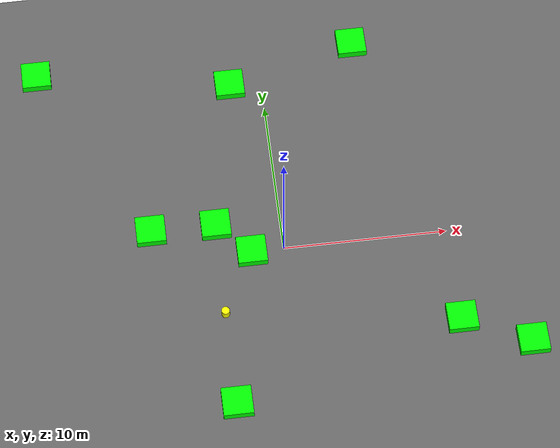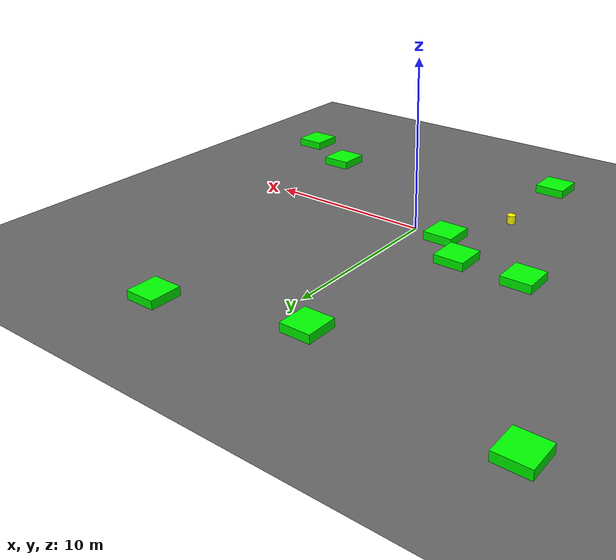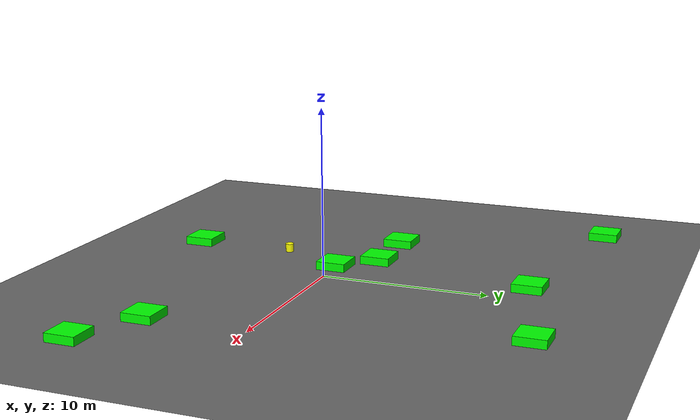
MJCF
<mujoco model="lvl99_naive_obs9_d1short_seed9046">
    <compiler angle="degree" coordinate="local" inertiafromgeom="true"/>
    <option integrator="RK4" timestep="0.01"/>

    <asset>
        <texture builtin="gradient" height="100" rgb1="0.6 0.8 1" rgb2="0 0 0" type="skybox" width="100"/>
        <texture name="floor_texture" type="2d" builtin="checker" width="100" height="100" rgb1="0 0 0" rgb2="0.8 0.8 0.8"/>
        <material name="MatPlane" reflectance="0.5" shininess="1" specular="1" texrepeat="10 10" texture="floor_texture"/>
    </asset>

    <!-- Excluding the contact between the agent and the goal, and the agent and the floor -->
    <contact>
        <exclude body1="agent" body2="goal"/>
        <exclude body1 = "agent" body2 = "floor"/>
    </contact>

    <extension>
        <plugin plugin = "mujoco.pid">
            <instance name = "pid1">
                <config key="kp" value="2"/>
                <config key="ki" value="0"/>
                <config key="kd" value="55"/>
            </instance>
        </plugin>
    </extension>

    <worldbody>
        <light cutoff="100" diffuse="1 1 1" dir="-0 0 -1.3" directional="true" exponent="1" pos="0 0 1.3" specular=".1 .1 .1"/>
        <body name="floor" pos="0 0 0">
            <geom name="floor_geom" type="plane" size="20 20 0.1" material="MatPlane"/>
        </body>

                <body name="goal" pos="0.0000 0.0000 0">
            <geom name="goal_geom" type="plane" size="0.5 0.5 1" pos="0 0 0" rgba="1 0 0 1"/>
        </body>

                <body name="agent" pos="-4.0000 -4.0000 0.250">
            <joint name="j1" type="slide" axis ="1 0 0 "/>
            <joint name="j2" type="slide" axis ="0 1 0 "/>
            <geom name="agent_geom" type="cylinder" size="0.25 0.25 0.250" rgba="1 1 0 1"/>
        </body>

        <body name="obstacle1" pos="-14.0383 13.9601 0.250">  <geom name="obstacle1_geom" type="box" size="0.9000 0.9000 0.250" rgba="0 1 0 1"/></body>
        <body name="obstacle2" pos="6.0202 14.0900 0.250">  <geom name="obstacle2_geom" type="box" size="0.9000 0.9000 0.250" rgba="0 1 0 1"/></body>
        <body name="obstacle3" pos="-1.9975 11.9272 0.250">  <geom name="obstacle3_geom" type="box" size="0.9000 0.9000 0.250" rgba="0 1 0 1"/></body>
        <body name="obstacle4" pos="-7.9340 2.0715 0.250">  <geom name="obstacle4_geom" type="box" size="0.9000 0.9000 0.250" rgba="0 1 0 1"/></body>
        <body name="obstacle5" pos="-3.9554 2.0333 0.250">  <geom name="obstacle5_geom" type="box" size="0.9000 0.9000 0.250" rgba="0 1 0 1"/></body>
        <body name="obstacle6" pos="-1.9627 -0.0251 0.250">  <geom name="obstacle6_geom" type="box" size="0.9000 0.9000 0.250" rgba="0 1 0 1"/></body>
        <body name="obstacle7" pos="10.0377 -6.0044 0.250">  <geom name="obstacle7_geom" type="box" size="0.9000 0.9000 0.250" rgba="0 1 0 1"/></body>
        <body name="obstacle8" pos="14.0256 -7.9604 0.250">  <geom name="obstacle8_geom" type="box" size="0.9000 0.9000 0.250" rgba="0 1 0 1"/></body>
        <body name="obstacle9" pos="-3.9739 -9.9447 0.250">  <geom name="obstacle9_geom" type="box" size="0.9000 0.9000 0.250" rgba="0 1 0 1"/></body>

    </worldbody>

    <sensor>
<!-- SENSORS -->

        <distance name="dist1" geom1="agent_geom" geom2="obstacle1_geom" cutoff="1.5"/>
        <distance name="dist2" geom1="agent_geom" geom2="obstacle2_geom" cutoff="1.5"/>
        <distance name="dist3" geom1="agent_geom" geom2="obstacle3_geom" cutoff="1.5"/>
        <distance name="dist4" geom1="agent_geom" geom2="obstacle4_geom" cutoff="1.5"/>
        <distance name="dist5" geom1="agent_geom" geom2="obstacle5_geom" cutoff="1.5"/>
        <distance name="dist6" geom1="agent_geom" geom2="obstacle6_geom" cutoff="1.5"/>
        <distance name="dist7" geom1="agent_geom" geom2="obstacle7_geom" cutoff="1.5"/>
        <distance name="dist8" geom1="agent_geom" geom2="obstacle8_geom" cutoff="1.5"/>
        <distance name="dist9" geom1="agent_geom" geom2="obstacle9_geom" cutoff="1.5"/>
</sensor>

    <actuator>
        <plugin joint="j1" plugin="mujoco.pid" instance="pid1" />
        <plugin joint="j2" plugin="mujoco.pid" instance="pid1"/>
    </actuator>
</mujoco>
